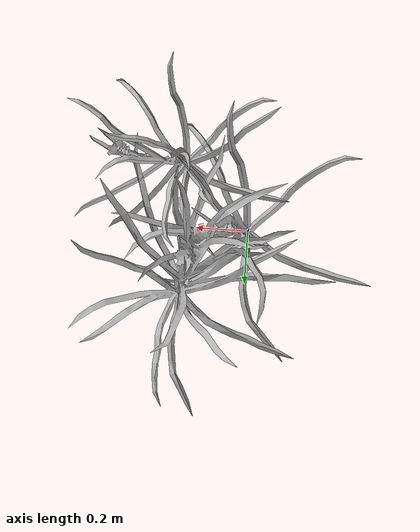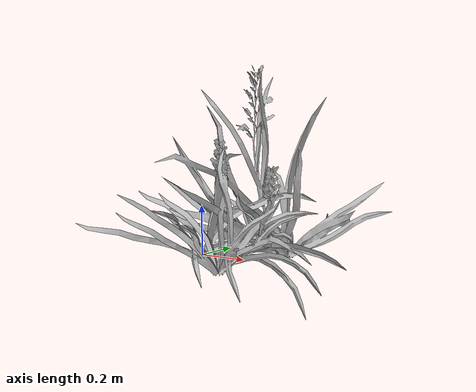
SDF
<?xml version="1.0" ?>
<sdf version="1.6">
  <model name="weed5">
    <static>1</static>
    <link name="weed5_1">

      <visual name="branch">
        <geometry>
          <mesh>
            <uri>model://weed5/meshes/GC14_1.obj</uri>
          </mesh>
        </geometry>

        <cast_shadows>1</cast_shadows>
      </visual>
    </link>
    <link name="weed5_2">

      <visual name="weed5_2">
        <geometry>
          <mesh>
            <uri>model://weed5/meshes/GC14_2.obj</uri>
          </mesh>
        </geometry>
        <cast_shadows>1</cast_shadows>
      </visual>
        <pose>0.25 -0.25 0 0 0 0</pose>
    </link>
    <link name="weed5_3">

      <visual name="weed5_3">
        <geometry>
          <mesh>
            <uri>model://weed5/meshes/GC14_3.obj</uri>
          </mesh>
        </geometry>
        <cast_shadows>1</cast_shadows>
      </visual>
        <pose>0.25 0.25 0 0 0 0</pose>
    </link>
  </model>
</sdf>
